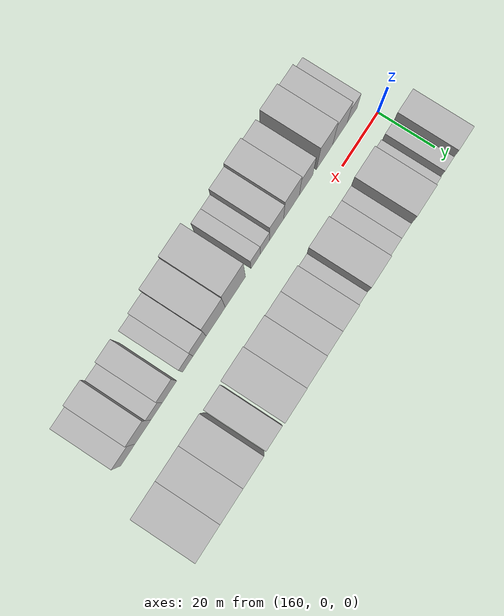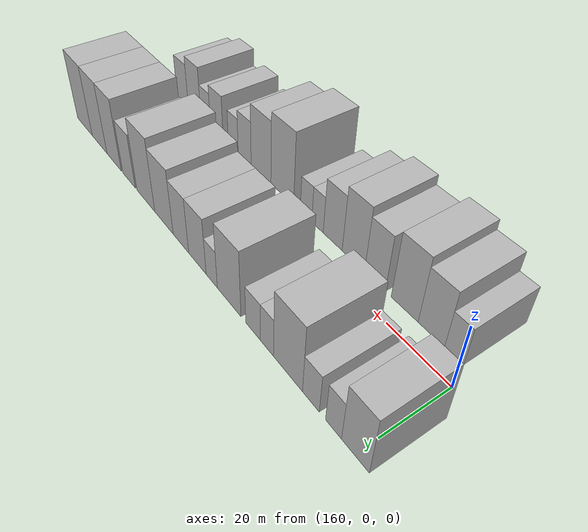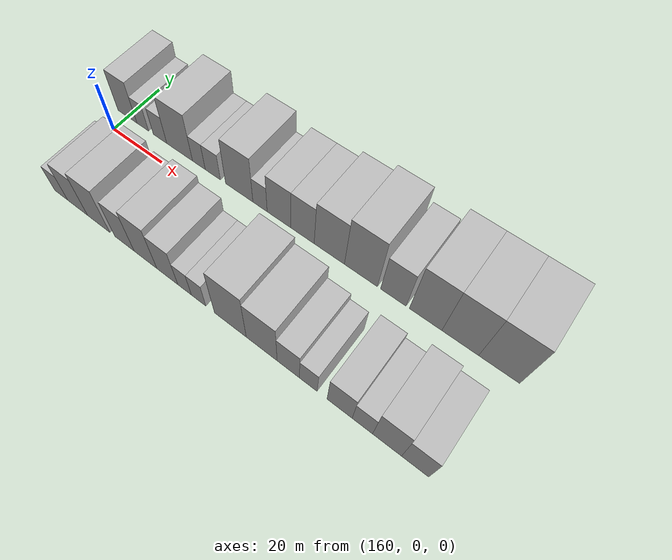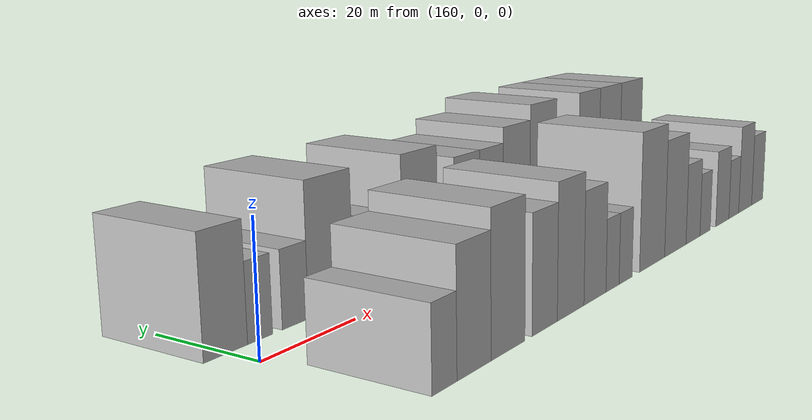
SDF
<sdf version="1.6">
 <world name="default">
  <model name="building_17">
   <static>1</static>
   <pose>159.7544 16.0000 0 0.000000 0.000000 1.570796</pose>
   <link name="link">
    <pose>0 0 9.00 0 0 0</pose>
    <collision name="collision"><geometry><box><size>20.0000 8.1728 18.0000</size></box></geometry></collision>
    <visual name="visual">
     <cast_shadows>0</cast_shadows>
     <geometry><box><size>20.0000 8.1728 18.0000</size></box></geometry>
     <material>
      <script>
       <uri>model://HANNAS_wall/materials/scripts</uri>
       <uri>model://HANNAS_wall/materials/textures</uri>
       <name>vrc/HANNAS_wall</name>
      </script>
     </material>
    </visual>
   </link>
  </model>
  <model name="building_18">
   <static>1</static>
   <pose>166.3292 16.0000 0 0.000000 0.000000 1.570796</pose>
   <link name="link">
    <pose>0 0 6.00 0 0 0</pose>
    <collision name="collision"><geometry><box><size>20.0000 4.9768 12.0000</size></box></geometry></collision>
    <visual name="visual">
     <cast_shadows>0</cast_shadows>
     <geometry><box><size>20.0000 4.9768 12.0000</size></box></geometry>
     <material>
      <script>
       <uri>model://HANNAS_wall/materials/scripts</uri>
       <uri>model://HANNAS_wall/materials/textures</uri>
       <name>vrc/HANNAS_wall</name>
      </script>
     </material>
    </visual>
   </link>
  </model>
  <model name="building_19">
   <static>1</static>
   <pose>173.6158 16.0000 0 0.000000 0.000000 1.570796</pose>
   <link name="link">
    <pose>0 0 6.00 0 0 0</pose>
    <collision name="collision"><geometry><box><size>20.0000 5.5964 12.0000</size></box></geometry></collision>
    <visual name="visual">
     <cast_shadows>0</cast_shadows>
     <geometry><box><size>20.0000 5.5964 12.0000</size></box></geometry>
     <material>
      <script>
       <uri>model://HANNAS_wall/materials/scripts</uri>
       <uri>model://HANNAS_wall/materials/textures</uri>
       <name>vrc/HANNAS_wall</name>
      </script>
     </material>
    </visual>
   </link>
  </model>
  <model name="building_20">
   <static>1</static>
   <pose>181.6294 16.0000 0 0.000000 0.000000 1.570796</pose>
   <link name="link">
    <pose>0 0 10.50 0 0 0</pose>
    <collision name="collision"><geometry><box><size>20.0000 10.4307 21.0000</size></box></geometry></collision>
    <visual name="visual">
     <cast_shadows>0</cast_shadows>
     <geometry><box><size>20.0000 10.4307 21.0000</size></box></geometry>
     <material>
      <script>
       <uri>model://HANNAS_wall/materials/scripts</uri>
       <uri>model://HANNAS_wall/materials/textures</uri>
       <name>vrc/HANNAS_wall</name>
      </script>
     </material>
    </visual>
   </link>
  </model>
  <model name="building_21">
   <static>1</static>
   <pose>189.3610 16.0000 0 0.000000 0.000000 1.570796</pose>
   <link name="link">
    <pose>0 0 6.00 0 0 0</pose>
    <collision name="collision"><geometry><box><size>20.0000 5.0324 12.0000</size></box></geometry></collision>
    <visual name="visual">
     <cast_shadows>0</cast_shadows>
     <geometry><box><size>20.0000 5.0324 12.0000</size></box></geometry>
     <material>
      <script>
       <uri>model://HANNAS_wall/materials/scripts</uri>
       <uri>model://HANNAS_wall/materials/textures</uri>
       <name>vrc/HANNAS_wall</name>
      </script>
     </material>
    </visual>
   </link>
  </model>
  <model name="building_22">
   <static>1</static>
   <pose>194.8133 16.0000 0 0.000000 0.000000 1.570796</pose>
   <link name="link">
    <pose>0 0 6.00 0 0 0</pose>
    <collision name="collision"><geometry><box><size>20.0000 5.8723 12.0000</size></box></geometry></collision>
    <visual name="visual">
     <cast_shadows>0</cast_shadows>
     <geometry><box><size>20.0000 5.8723 12.0000</size></box></geometry>
     <material>
      <script>
       <uri>model://HANNAS_wall/materials/scripts</uri>
       <uri>model://HANNAS_wall/materials/textures</uri>
       <name>vrc/HANNAS_wall</name>
      </script>
     </material>
    </visual>
   </link>
  </model>
  <model name="building_23">
   <static>1</static>
   <pose>204.8770 16.0000 0 0.000000 0.000000 1.570796</pose>
   <link name="link">
    <pose>0 0 10.50 0 0 0</pose>
    <collision name="collision"><geometry><box><size>20.0000 10.2549 21.0000</size></box></geometry></collision>
    <visual name="visual">
     <cast_shadows>0</cast_shadows>
     <geometry><box><size>20.0000 10.2549 21.0000</size></box></geometry>
     <material>
      <script>
       <uri>model://HANNAS_wall/materials/scripts</uri>
       <uri>model://HANNAS_wall/materials/textures</uri>
       <name>vrc/HANNAS_wall</name>
      </script>
     </material>
    </visual>
   </link>
  </model>
  <model name="building_24">
   <static>1</static>
   <pose>212.6080 16.0000 0 0.000000 0.000000 1.570796</pose>
   <link name="link">
    <pose>0 0 6.00 0 0 0</pose>
    <collision name="collision"><geometry><box><size>20.0000 5.2071 12.0000</size></box></geometry></collision>
    <visual name="visual">
     <cast_shadows>0</cast_shadows>
     <geometry><box><size>20.0000 5.2071 12.0000</size></box></geometry>
     <material>
      <script>
       <uri>model://HANNAS_wall/materials/scripts</uri>
       <uri>model://HANNAS_wall/materials/textures</uri>
       <name>vrc/HANNAS_wall</name>
      </script>
     </material>
    </visual>
   </link>
  </model>
  <model name="building_25">
   <static>1</static>
   <pose>219.4483 16.0000 0 0.000000 0.000000 1.570796</pose>
   <link name="link">
    <pose>0 0 9.00 0 0 0</pose>
    <collision name="collision"><geometry><box><size>20.0000 8.4737 18.0000</size></box></geometry></collision>
    <visual name="visual">
     <cast_shadows>0</cast_shadows>
     <geometry><box><size>20.0000 8.4737 18.0000</size></box></geometry>
     <material>
      <script>
       <uri>model://HANNAS_wall/materials/scripts</uri>
       <uri>model://HANNAS_wall/materials/textures</uri>
       <name>vrc/HANNAS_wall</name>
      </script>
     </material>
    </visual>
   </link>
  </model>
  <model name="building_26">
   <static>1</static>
   <pose>227.7353 16.0000 0 0.000000 0.000000 1.570796</pose>
   <link name="link">
    <pose>0 0 9.00 0 0 0</pose>
    <collision name="collision"><geometry><box><size>20.0000 8.1002 18.0000</size></box></geometry></collision>
    <visual name="visual">
     <cast_shadows>0</cast_shadows>
     <geometry><box><size>20.0000 8.1002 18.0000</size></box></geometry>
     <material>
      <script>
       <uri>model://HANNAS_wall/materials/scripts</uri>
       <uri>model://HANNAS_wall/materials/textures</uri>
       <name>vrc/HANNAS_wall</name>
      </script>
     </material>
    </visual>
   </link>
  </model>
  <model name="building_27">
   <static>1</static>
   <pose>236.8950 16.0000 0 0.000000 0.000000 1.570796</pose>
   <link name="link">
    <pose>0 0 10.50 0 0 0</pose>
    <collision name="collision"><geometry><box><size>20.0000 10.2192 21.0000</size></box></geometry></collision>
    <visual name="visual">
     <cast_shadows>0</cast_shadows>
     <geometry><box><size>20.0000 10.2192 21.0000</size></box></geometry>
     <material>
      <script>
       <uri>model://HANNAS_wall/materials/scripts</uri>
       <uri>model://HANNAS_wall/materials/textures</uri>
       <name>vrc/HANNAS_wall</name>
      </script>
     </material>
    </visual>
   </link>
  </model>
  <model name="building_28">
   <static>1</static>
   <pose>247.3557 16.0000 0 0.000000 0.000000 1.570796</pose>
   <link name="link">
    <pose>0 0 12.00 0 0 0</pose>
    <collision name="collision"><geometry><box><size>20.0000 10.7022 24.0000</size></box></geometry></collision>
    <visual name="visual">
     <cast_shadows>0</cast_shadows>
     <geometry><box><size>20.0000 10.7022 24.0000</size></box></geometry>
     <material>
      <script>
       <uri>model://HANNAS_wall/materials/scripts</uri>
       <uri>model://HANNAS_wall/materials/textures</uri>
       <name>vrc/HANNAS_wall</name>
      </script>
     </material>
    </visual>
   </link>
  </model>
  <model name="building_29">
   <static>1</static>
   <pose>257.7020 16.0000 0 0.000000 0.000000 1.570796</pose>
   <link name="link">
    <pose>0 0 9.00 0 0 0</pose>
    <collision name="collision"><geometry><box><size>20.0000 7.9903 18.0000</size></box></geometry></collision>
    <visual name="visual">
     <cast_shadows>0</cast_shadows>
     <geometry><box><size>20.0000 7.9903 18.0000</size></box></geometry>
     <material>
      <script>
       <uri>model://HANNAS_wall/materials/scripts</uri>
       <uri>model://HANNAS_wall/materials/textures</uri>
       <name>vrc/HANNAS_wall</name>
      </script>
     </material>
    </visual>
   </link>
  </model>
  <model name="building_30">
   <static>1</static>
   <pose>267.6080 16.0000 0 0.000000 0.000000 1.570796</pose>
   <link name="link">
    <pose>0 0 12.00 0 0 0</pose>
    <collision name="collision"><geometry><box><size>20.0000 9.8217 24.0000</size></box></geometry></collision>
    <visual name="visual">
     <cast_shadows>0</cast_shadows>
     <geometry><box><size>20.0000 9.8217 24.0000</size></box></geometry>
     <material>
      <script>
       <uri>model://HANNAS_wall/materials/scripts</uri>
       <uri>model://HANNAS_wall/materials/textures</uri>
       <name>vrc/HANNAS_wall</name>
      </script>
     </material>
    </visual>
   </link>
  </model>
  <model name="building_31">
   <static>1</static>
   <pose>277.8639 16.0000 0 0.000000 0.000000 1.570796</pose>
   <link name="link">
    <pose>0 0 12.00 0 0 0</pose>
    <collision name="collision"><geometry><box><size>20.0000 10.6902 24.0000</size></box></geometry></collision>
    <visual name="visual">
     <cast_shadows>0</cast_shadows>
     <geometry><box><size>20.0000 10.6902 24.0000</size></box></geometry>
     <material>
      <script>
       <uri>model://HANNAS_wall/materials/scripts</uri>
       <uri>model://HANNAS_wall/materials/textures</uri>
       <name>vrc/HANNAS_wall</name>
      </script>
     </material>
    </visual>
   </link>
  </model>
  <model name="building_32">
   <static>1</static>
   <pose>288.9384 16.0000 0 0.000000 0.000000 1.570796</pose>
   <link name="link">
    <pose>0 0 12.00 0 0 0</pose>
    <collision name="collision"><geometry><box><size>20.0000 11.4587 24.0000</size></box></geometry></collision>
    <visual name="visual">
     <cast_shadows>0</cast_shadows>
     <geometry><box><size>20.0000 11.4587 24.0000</size></box></geometry>
     <material>
      <script>
       <uri>model://HANNAS_wall/materials/scripts</uri>
       <uri>model://HANNAS_wall/materials/textures</uri>
       <name>vrc/HANNAS_wall</name>
      </script>
     </material>
    </visual>
   </link>
  </model>
  <model name="building_47">
   <static>1</static>
   <pose>165.2591 -16.0000 0 0.000000 0.000000 1.570796</pose>
   <link name="link">
    <pose>0 0 6.00 0 0 0</pose>
    <collision name="collision"><geometry><box><size>20.0000 5.5311 12.0000</size></box></geometry></collision>
    <visual name="visual">
     <cast_shadows>0</cast_shadows>
     <geometry><box><size>20.0000 5.5311 12.0000</size></box></geometry>
     <material>
      <script>
       <uri>model://HANNAS_wall/materials/scripts</uri>
       <uri>model://HANNAS_wall/materials/textures</uri>
       <name>vrc/HANNAS_wall</name>
      </script>
     </material>
    </visual>
   </link>
  </model>
  <model name="building_48">
   <static>1</static>
   <pose>172.0974 -16.0000 0 0.000000 0.000000 1.570796</pose>
   <link name="link">
    <pose>0 0 9.00 0 0 0</pose>
    <collision name="collision"><geometry><box><size>20.0000 8.1456 18.0000</size></box></geometry></collision>
    <visual name="visual">
     <cast_shadows>0</cast_shadows>
     <geometry><box><size>20.0000 8.1456 18.0000</size></box></geometry>
     <material>
      <script>
       <uri>model://HANNAS_wall/materials/scripts</uri>
       <uri>model://HANNAS_wall/materials/textures</uri>
       <name>vrc/HANNAS_wall</name>
      </script>
     </material>
    </visual>
   </link>
  </model>
  <model name="building_49">
   <static>1</static>
   <pose>180.6289 -16.0000 0 0.000000 0.000000 1.570796</pose>
   <link name="link">
    <pose>0 0 10.50 0 0 0</pose>
    <collision name="collision"><geometry><box><size>20.0000 8.9173 21.0000</size></box></geometry></collision>
    <visual name="visual">
     <cast_shadows>0</cast_shadows>
     <geometry><box><size>20.0000 8.9173 21.0000</size></box></geometry>
     <material>
      <script>
       <uri>model://HANNAS_wall/materials/scripts</uri>
       <uri>model://HANNAS_wall/materials/textures</uri>
       <name>vrc/HANNAS_wall</name>
      </script>
     </material>
    </visual>
   </link>
  </model>
  <model name="building_50">
   <static>1</static>
   <pose>190.8117 -16.0000 0 0.000000 0.000000 1.570796</pose>
   <link name="link">
    <pose>0 0 9.00 0 0 0</pose>
    <collision name="collision"><geometry><box><size>20.0000 7.4483 18.0000</size></box></geometry></collision>
    <visual name="visual">
     <cast_shadows>0</cast_shadows>
     <geometry><box><size>20.0000 7.4483 18.0000</size></box></geometry>
     <material>
      <script>
       <uri>model://HANNAS_wall/materials/scripts</uri>
       <uri>model://HANNAS_wall/materials/textures</uri>
       <name>vrc/HANNAS_wall</name>
      </script>
     </material>
    </visual>
   </link>
  </model>
  <model name="building_51">
   <static>1</static>
   <pose>198.8058 -16.0000 0 0.000000 0.000000 1.570796</pose>
   <link name="link">
    <pose>0 0 10.50 0 0 0</pose>
    <collision name="collision"><geometry><box><size>20.0000 8.5399 21.0000</size></box></geometry></collision>
    <visual name="visual">
     <cast_shadows>0</cast_shadows>
     <geometry><box><size>20.0000 8.5399 21.0000</size></box></geometry>
     <material>
      <script>
       <uri>model://HANNAS_wall/materials/scripts</uri>
       <uri>model://HANNAS_wall/materials/textures</uri>
       <name>vrc/HANNAS_wall</name>
      </script>
     </material>
    </visual>
   </link>
  </model>
  <model name="building_52">
   <static>1</static>
   <pose>206.9073 -16.0000 0 0.000000 0.000000 1.570796</pose>
   <link name="link">
    <pose>0 0 9.00 0 0 0</pose>
    <collision name="collision"><geometry><box><size>20.0000 7.6631 18.0000</size></box></geometry></collision>
    <visual name="visual">
     <cast_shadows>0</cast_shadows>
     <geometry><box><size>20.0000 7.6631 18.0000</size></box></geometry>
     <material>
      <script>
       <uri>model://HANNAS_wall/materials/scripts</uri>
       <uri>model://HANNAS_wall/materials/textures</uri>
       <name>vrc/HANNAS_wall</name>
      </script>
     </material>
    </visual>
   </link>
  </model>
  <model name="building_53">
   <static>1</static>
   <pose>213.1612 -16.0000 0 0.000000 0.000000 1.570796</pose>
   <link name="link">
    <pose>0 0 6.00 0 0 0</pose>
    <collision name="collision"><geometry><box><size>20.0000 4.8447 12.0000</size></box></geometry></collision>
    <visual name="visual">
     <cast_shadows>0</cast_shadows>
     <geometry><box><size>20.0000 4.8447 12.0000</size></box></geometry>
     <material>
      <script>
       <uri>model://HANNAS_wall/materials/scripts</uri>
       <uri>model://HANNAS_wall/materials/textures</uri>
       <name>vrc/HANNAS_wall</name>
      </script>
     </material>
    </visual>
   </link>
  </model>
  <model name="building_54">
   <static>1</static>
   <pose>218.0965 -16.0000 0 0.000000 0.000000 1.570796</pose>
   <link name="link">
    <pose>0 0 6.00 0 0 0</pose>
    <collision name="collision"><geometry><box><size>20.0000 5.0258 12.0000</size></box></geometry></collision>
    <visual name="visual">
     <cast_shadows>0</cast_shadows>
     <geometry><box><size>20.0000 5.0258 12.0000</size></box></geometry>
     <material>
      <script>
       <uri>model://HANNAS_wall/materials/scripts</uri>
       <uri>model://HANNAS_wall/materials/textures</uri>
       <name>vrc/HANNAS_wall</name>
      </script>
     </material>
    </visual>
   </link>
  </model>
  <model name="building_55">
   <static>1</static>
   <pose>228.9651 -16.0000 0 0.000000 0.000000 1.570796</pose>
   <link name="link">
    <pose>0 0 12.00 0 0 0</pose>
    <collision name="collision"><geometry><box><size>20.0000 10.7114 24.0000</size></box></geometry></collision>
    <visual name="visual">
     <cast_shadows>0</cast_shadows>
     <geometry><box><size>20.0000 10.7114 24.0000</size></box></geometry>
     <material>
      <script>
       <uri>model://HANNAS_wall/materials/scripts</uri>
       <uri>model://HANNAS_wall/materials/textures</uri>
       <name>vrc/HANNAS_wall</name>
      </script>
     </material>
    </visual>
   </link>
  </model>
  <model name="building_56">
   <static>1</static>
   <pose>239.3212 -16.0000 0 0.000000 0.000000 1.570796</pose>
   <link name="link">
    <pose>0 0 10.50 0 0 0</pose>
    <collision name="collision"><geometry><box><size>20.0000 10.0007 21.0000</size></box></geometry></collision>
    <visual name="visual">
     <cast_shadows>0</cast_shadows>
     <geometry><box><size>20.0000 10.0007 21.0000</size></box></geometry>
     <material>
      <script>
       <uri>model://HANNAS_wall/materials/scripts</uri>
       <uri>model://HANNAS_wall/materials/textures</uri>
       <name>vrc/HANNAS_wall</name>
      </script>
     </material>
    </visual>
   </link>
  </model>
  <model name="building_57">
   <static>1</static>
   <pose>247.8029 -16.0000 0 0.000000 0.000000 1.570796</pose>
   <link name="link">
    <pose>0 0 7.50 0 0 0</pose>
    <collision name="collision"><geometry><box><size>20.0000 6.9627 15.0000</size></box></geometry></collision>
    <visual name="visual">
     <cast_shadows>0</cast_shadows>
     <geometry><box><size>20.0000 6.9627 15.0000</size></box></geometry>
     <material>
      <script>
       <uri>model://HANNAS_wall/materials/scripts</uri>
       <uri>model://HANNAS_wall/materials/textures</uri>
       <name>vrc/HANNAS_wall</name>
      </script>
     </material>
    </visual>
   </link>
  </model>
  <model name="building_58">
   <static>1</static>
   <pose>254.0057 -16.0000 0 0.000000 0.000000 1.570796</pose>
   <link name="link">
    <pose>0 0 6.00 0 0 0</pose>
    <collision name="collision"><geometry><box><size>20.0000 5.4431 12.0000</size></box></geometry></collision>
    <visual name="visual">
     <cast_shadows>0</cast_shadows>
     <geometry><box><size>20.0000 5.4431 12.0000</size></box></geometry>
     <material>
      <script>
       <uri>model://HANNAS_wall/materials/scripts</uri>
       <uri>model://HANNAS_wall/materials/textures</uri>
       <name>vrc/HANNAS_wall</name>
      </script>
     </material>
    </visual>
   </link>
  </model>
  <model name="building_59">
   <static>1</static>
   <pose>263.4447 -16.0000 0 0.000000 0.000000 1.570796</pose>
   <link name="link">
    <pose>0 0 7.50 0 0 0</pose>
    <collision name="collision"><geometry><box><size>20.0000 7.4348 15.0000</size></box></geometry></collision>
    <visual name="visual">
     <cast_shadows>0</cast_shadows>
     <geometry><box><size>20.0000 7.4348 15.0000</size></box></geometry>
     <material>
      <script>
       <uri>model://HANNAS_wall/materials/scripts</uri>
       <uri>model://HANNAS_wall/materials/textures</uri>
       <name>vrc/HANNAS_wall</name>
      </script>
     </material>
    </visual>
   </link>
  </model>
  <model name="building_60">
   <static>1</static>
   <pose>270.0912 -16.0000 0 0.000000 0.000000 1.570796</pose>
   <link name="link">
    <pose>0 0 6.00 0 0 0</pose>
    <collision name="collision"><geometry><box><size>20.0000 5.8582 12.0000</size></box></geometry></collision>
    <visual name="visual">
     <cast_shadows>0</cast_shadows>
     <geometry><box><size>20.0000 5.8582 12.0000</size></box></geometry>
     <material>
      <script>
       <uri>model://HANNAS_wall/materials/scripts</uri>
       <uri>model://HANNAS_wall/materials/textures</uri>
       <name>vrc/HANNAS_wall</name>
      </script>
     </material>
    </visual>
   </link>
  </model>
  <model name="building_61">
   <static>1</static>
   <pose>277.0783 -16.0000 0 0.000000 0.000000 1.570796</pose>
   <link name="link">
    <pose>0 0 9.00 0 0 0</pose>
    <collision name="collision"><geometry><box><size>20.0000 8.1160 18.0000</size></box></geometry></collision>
    <visual name="visual">
     <cast_shadows>0</cast_shadows>
     <geometry><box><size>20.0000 8.1160 18.0000</size></box></geometry>
     <material>
      <script>
       <uri>model://HANNAS_wall/materials/scripts</uri>
       <uri>model://HANNAS_wall/materials/textures</uri>
       <name>vrc/HANNAS_wall</name>
      </script>
     </material>
    </visual>
   </link>
  </model>
  <model name="building_62">
   <static>1</static>
   <pose>284.8334 -16.0000 0 0.000000 0.000000 1.570796</pose>
   <link name="link">
    <pose>0 0 7.50 0 0 0</pose>
    <collision name="collision"><geometry><box><size>20.0000 7.3942 15.0000</size></box></geometry></collision>
    <visual name="visual">
     <cast_shadows>0</cast_shadows>
     <geometry><box><size>20.0000 7.3942 15.0000</size></box></geometry>
     <material>
      <script>
       <uri>model://HANNAS_wall/materials/scripts</uri>
       <uri>model://HANNAS_wall/materials/textures</uri>
       <name>vrc/HANNAS_wall</name>
      </script>
     </material>
    </visual>
   </link>
  </model>
 </world>
</sdf>
